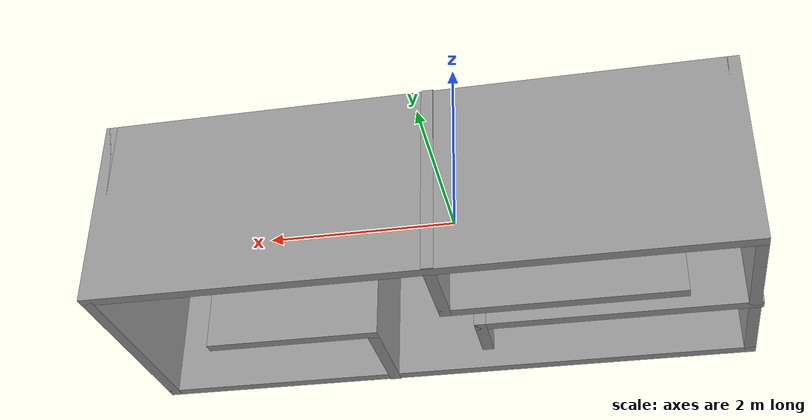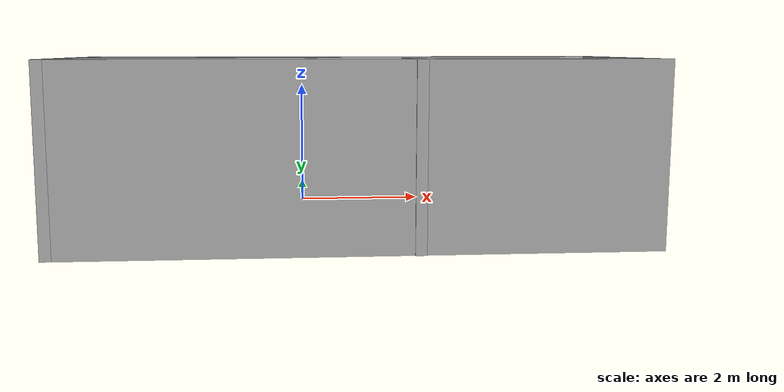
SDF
<?xml version='1.0'?>
<sdf version='1.7'>
  <model name='room'>
    <pose>0.7 -1.9825 0 0 -0 0</pose>
    <link name='Wall_10'>
      <collision name='Wall_10_Collision'>
        <geometry>
          <box>
            <size>3 0.15 2.5</size>
          </box>
        </geometry>
        <pose>0 0 1.25 0 -0 0</pose>
      </collision>
      <visual name='Wall_10_Visual'>
        <pose>0 0 1.25 0 -0 0</pose>
        <geometry>
          <box>
            <size>3 0.15 2.5</size>
          </box>
        </geometry>
        <material>
          <script>
            <uri>file://media/materials/scripts/gazebo.material</uri>
            <name>Gazebo/Grey</name>
          </script>
          <ambient>1 1 1 1</ambient>
        </material>
        <meta>
          <layer>0</layer>
        </meta>
      </visual>
      <pose>-3.91 -0.4625 0 0 -0 1.5708</pose>
    </link>
    <link name='Wall_12'>
      <collision name='Wall_12_Collision'>
        <geometry>
          <box>
            <size>1.25 0.15 2.5</size>
          </box>
        </geometry>
        <pose>0 0 1.25 0 -0 0</pose>
      </collision>
      <visual name='Wall_12_Visual'>
        <pose>0 0 1.25 0 -0 0</pose>
        <geometry>
          <box>
            <size>1.25 0.15 2.5</size>
          </box>
        </geometry>
        <material>
          <script>
            <uri>file://media/materials/scripts/gazebo.material</uri>
            <name>Gazebo/Grey</name>
          </script>
          <ambient>1 1 1 1</ambient>
        </material>
        <meta>
          <layer>0</layer>
        </meta>
      </visual>
      <pose>-0.22 0.4325 0 0 -0 -1.5708</pose>
    </link>
    <link name='Wall_15'>
      <collision name='Wall_15_Collision'>
        <geometry>
          <box>
            <size>3 0.15 2.5</size>
          </box>
        </geometry>
        <pose>0 0 1.25 0 -0 0</pose>
      </collision>
      <visual name='Wall_15_Visual'>
        <pose>0 0 1.25 0 -0 0</pose>
        <geometry>
          <box>
            <size>3 0.15 2.5</size>
          </box>
        </geometry>
        <material>
          <script>
            <uri>file://media/materials/scripts/gazebo.material</uri>
            <name>Gazebo/Grey</name>
          </script>
          <ambient>1 1 1 1</ambient>
        </material>
        <meta>
          <layer>0</layer>
        </meta>
      </visual>
      <pose>-1.645 -0.1175 0 0 -0 3.14159</pose>
    </link>
    <link name='Wall_17'>
      <collision name='Wall_17_Collision'>
        <geometry>
          <box>
            <size>3.5 0.15 2.5</size>
          </box>
        </geometry>
        <pose>0 0 1.25 0 -0 0</pose>
      </collision>
      <visual name='Wall_17_Visual'>
        <pose>0 0 1.25 0 -0 0</pose>
        <geometry>
          <box>
            <size>3.5 0.15 2.5</size>
          </box>
        </geometry>
        <material>
          <script>
            <uri>file://media/materials/scripts/gazebo.material</uri>
            <name>Gazebo/Grey</name>
          </script>
          <ambient>1 1 1 1</ambient>
        </material>
        <meta>
          <layer>0</layer>
        </meta>
      </visual>
      <pose>-2.265 -0.5775 0 0 -0 0</pose>
    </link>
    <link name='Wall_18'>
      <collision name='Wall_18_Collision'>
        <geometry>
          <box>
            <size>0.75 0.15 2.5</size>
          </box>
        </geometry>
        <pose>0 0 1.25 0 -0 0</pose>
      </collision>
      <visual name='Wall_18_Visual'>
        <pose>0 0 1.25 0 -0 0</pose>
        <geometry>
          <box>
            <size>0.75 0.15 2.5</size>
          </box>
        </geometry>
        <material>
          <script>
            <uri>file://media/materials/scripts/gazebo.material</uri>
            <name>Gazebo/Grey</name>
          </script>
          <ambient>1 1 1 1</ambient>
        </material>
        <meta>
          <layer>0</layer>
        </meta>
      </visual>
      <pose>-0.59 -0.8775 0 0 -0 -1.5708</pose>
    </link>
    <link name='Wall_20'>
      <collision name='Wall_20_Collision'>
        <geometry>
          <box>
            <size>1.5 0.15 2.5</size>
          </box>
        </geometry>
        <pose>0 0 1.25 0 -0 0</pose>
      </collision>
      <visual name='Wall_20_Visual'>
        <pose>0 0 1.25 0 -0 0</pose>
        <geometry>
          <box>
            <size>1.5 0.15 2.5</size>
          </box>
        </geometry>
        <material>
          <script>
            <uri>file://media/materials/scripts/gazebo.material</uri>
            <name>Gazebo/Grey</name>
          </script>
          <ambient>1 1 1 1</ambient>
        </material>
        <meta>
          <layer>0</layer>
        </meta>
      </visual>
      <pose>0.79 -1.2325 0 0 -0 1.5708</pose>
    </link>
    <link name='Wall_21'>
      <collision name='Wall_21_Collision'>
        <geometry>
          <box>
            <size>2.25 0.15 2.5</size>
          </box>
        </geometry>
        <pose>0 0 1.25 0 -0 0</pose>
      </collision>
      <visual name='Wall_21_Visual'>
        <pose>0 0 1.25 0 -0 0</pose>
        <geometry>
          <box>
            <size>2.25 0.15 2.5</size>
          </box>
        </geometry>
        <material>
          <script>
            <uri>file://media/materials/scripts/gazebo.material</uri>
            <name>Gazebo/Grey</name>
          </script>
          <ambient>1 1 1 1</ambient>
        </material>
        <meta>
          <layer>0</layer>
        </meta>
      </visual>
      <pose>1.84 -0.5575 0 0 -0 0</pose>
    </link>
    <link name='Wall_7'>
      <collision name='Wall_7_Collision'>
        <geometry>
          <box>
            <size>8 0.15 2.5</size>
          </box>
        </geometry>
        <pose>0 0 1.25 0 -0 0</pose>
      </collision>
      <visual name='Wall_7_Visual'>
        <pose>0 0 1.25 0 -0 0</pose>
        <geometry>
          <box>
            <size>8 0.15 2.5</size>
          </box>
        </geometry>
        <material>
          <script>
            <uri>file://media/materials/scripts/gazebo.material</uri>
            <name>Gazebo/Grey</name>
          </script>
          <ambient>1 1 1 1</ambient>
        </material>
        <meta>
          <layer>0</layer>
        </meta>
      </visual>
      <pose>0.015 0.9625 0 0 -0 0</pose>
    </link>
    <link name='Wall_8'>
      <collision name='Wall_8_Collision'>
        <geometry>
          <box>
            <size>3 0.15 2.5</size>
          </box>
        </geometry>
        <pose>0 0 1.25 0 -0 0</pose>
      </collision>
      <visual name='Wall_8_Visual'>
        <pose>0 0 1.25 0 -0 0</pose>
        <geometry>
          <box>
            <size>3 0.15 2.5</size>
          </box>
        </geometry>
        <material>
          <script>
            <uri>file://media/materials/scripts/gazebo.material</uri>
            <name>Gazebo/Grey</name>
          </script>
          <ambient>1 1 1 1</ambient>
        </material>
        <meta>
          <layer>0</layer>
        </meta>
      </visual>
      <pose>3.94 -0.4625 0 0 -0 -1.5708</pose>
    </link>
    <link name='Wall_9'>
      <collision name='Wall_9_Collision'>
        <geometry>
          <box>
            <size>8 0.15 2.5</size>
          </box>
        </geometry>
        <pose>0 0 1.25 0 -0 0</pose>
      </collision>
      <visual name='Wall_9_Visual'>
        <pose>0 0 1.25 0 -0 0</pose>
        <geometry>
          <box>
            <size>8 0.15 2.5</size>
          </box>
        </geometry>
        <material>
          <script>
            <uri>file://media/materials/scripts/gazebo.material</uri>
            <name>Gazebo/Grey</name>
          </script>
          <ambient>1 1 1 1</ambient>
        </material>
        <meta>
          <layer>0</layer>
        </meta>
      </visual>
      <pose>0.015 -1.8875 0 0 -0 3.14159</pose>
    </link>
    <static>1</static>
  </model>
</sdf>
